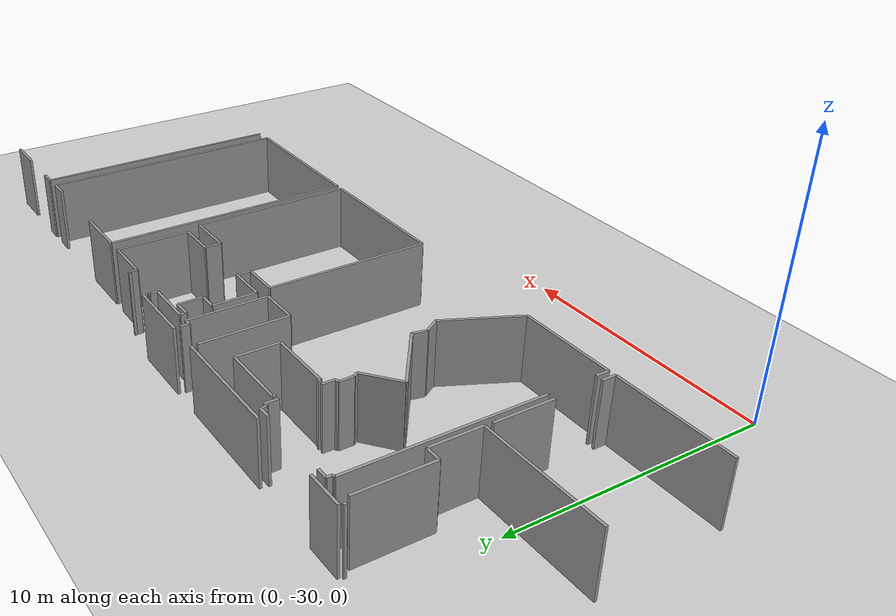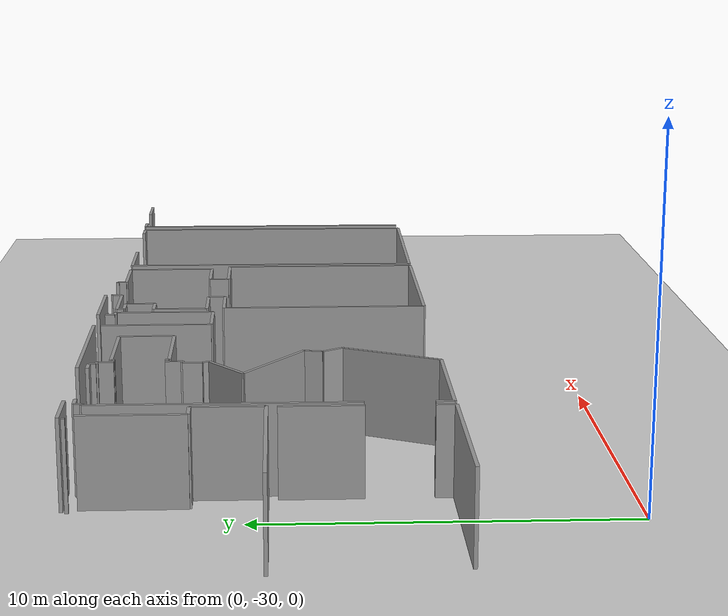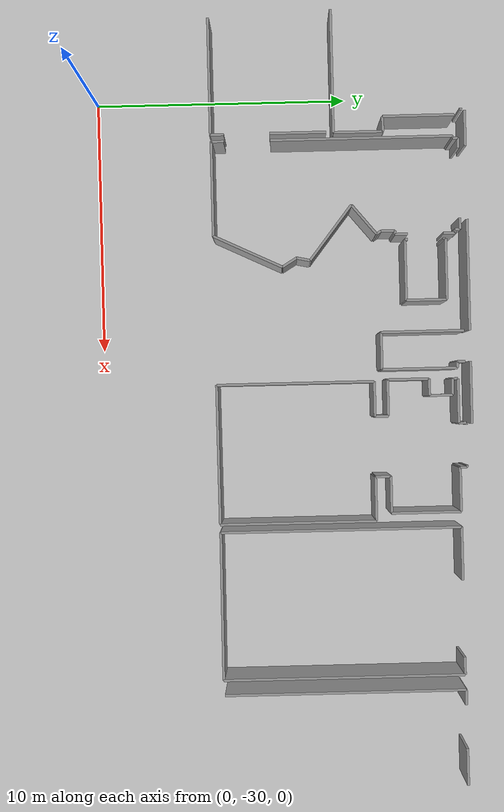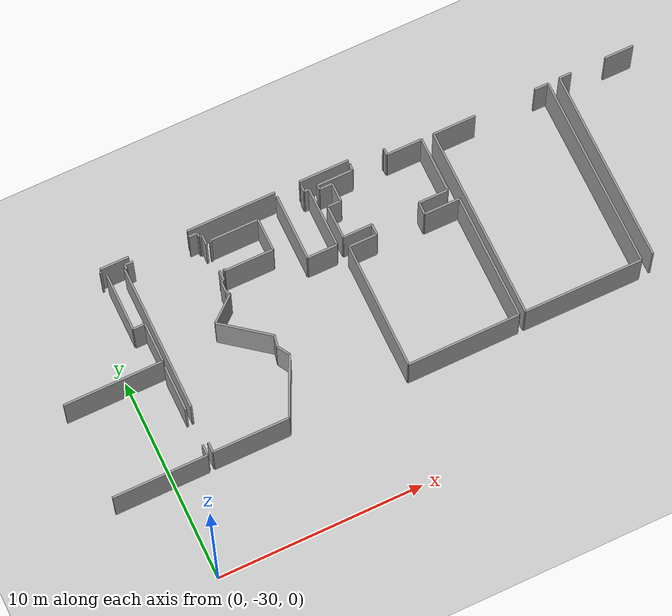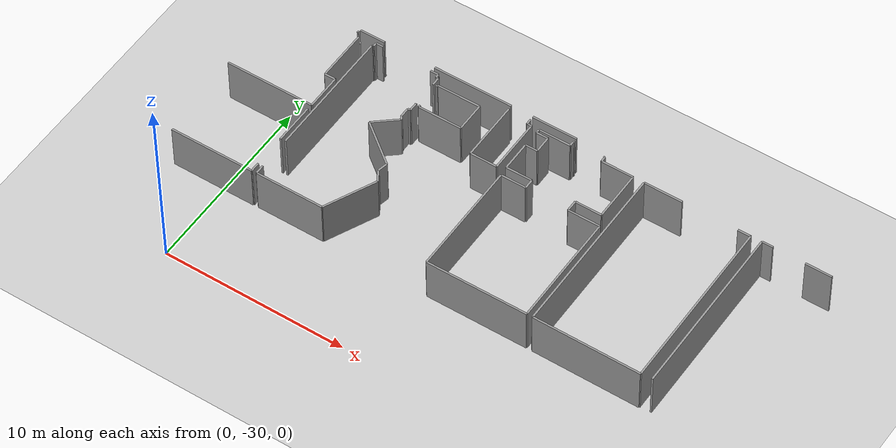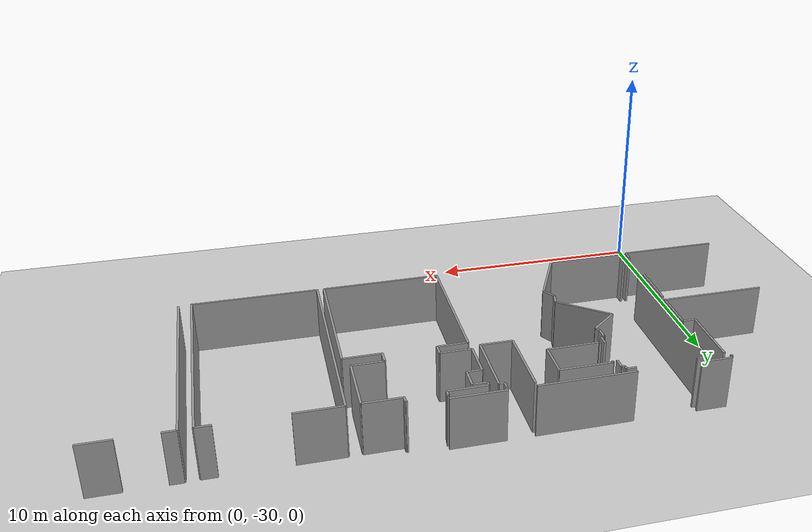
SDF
<sdf version="1.6">
 <world name="default">
  <model name="ground_plane">
   <static>1</static>
   <link name="link">
    <collision name="collision">
     <geometry><plane><normal>0 0 1</normal><size>100 100</size></plane></geometry>
     <surface><friction><ode><mu>100</mu><mu2>50</mu2></ode></friction></surface>
    </collision>
    <visual name="visual">
     <cast_shadows>0</cast_shadows>
     <geometry><plane><normal>0 0 1</normal><size>100 100</size></plane></geometry>
     <material>
      <script><uri>file://media/materials/scripts/gazebo.material</uri><name>Gazebo/Grey</name></script>
     </material>
    </visual>
   </link>
  </model>
  <model name="50045366">
   <static>1</static>
   <link name="Wall_249">
    <collision name="Wall_249_Collision">
     <geometry><box><size>2.43754048596 0.1 2.5</size></box></geometry>
     <pose>1.21877024298 0 1.25 0 0 0</pose>
    </collision>
    <visual name="Wall_249_Visual">
     <pose>1.21877024298 0 1.25 0 0 0</pose>
     <geometry><box><size>2.43754048596 0.1 2.5</size></box></geometry>
     <material>
      <script><uri>file://media/materials/scripts/gazebo.material</uri><name>Gazebo/Grey</name></script>
      <ambient>1 1 1 1</ambient>
     </material>
    </visual>
    <pose>67.3339599395 -40.7622156457 0 0 0 3.14159265359</pose>
   </link>
   <link name="Wall_250">
    <collision name="Wall_250_Collision">
     <geometry><box><size>4.34276206323 0.1 2.5</size></box></geometry>
     <pose>2.17138103161 0 1.25 0 0 0</pose>
    </collision>
    <visual name="Wall_250_Visual">
     <pose>2.17138103161 0 1.25 0 0 0</pose>
     <geometry><box><size>4.34276206323 0.1 2.5</size></box></geometry>
     <material>
      <script><uri>file://media/materials/scripts/gazebo.material</uri><name>Gazebo/Grey</name></script>
      <ambient>1 1 1 1</ambient>
     </material>
    </visual>
    <pose>63.6808880873 -40.7622156457 0 0 0 3.14159265359</pose>
   </link>
   <link name="Wall_251">
    <collision name="Wall_251_Collision">
     <geometry><box><size>1.39424115025 0.1 2.5</size></box></geometry>
     <pose>0.697120575123 0 1.25 0 0 0</pose>
    </collision>
    <visual name="Wall_251_Visual">
     <pose>0.697120575123 0 1.25 0 0 0</pose>
     <geometry><box><size>1.39424115025 0.1 2.5</size></box></geometry>
     <material>
      <script><uri>file://media/materials/scripts/gazebo.material</uri><name>Gazebo/Grey</name></script>
      <ambient>1 1 1 1</ambient>
     </material>
    </visual>
    <pose>56.4646708412 -40.7622156457 0 0 0 3.14159265359</pose>
   </link>
   <link name="Wall_253">
    <collision name="Wall_253_Collision">
     <geometry><box><size>0.0884022811853 0.1 2.5</size></box></geometry>
     <pose>0.0442011405926 0 1.25 0 0 0</pose>
    </collision>
    <visual name="Wall_253_Visual">
     <pose>0.0442011405926 0 1.25 0 0 0</pose>
     <geometry><box><size>0.0884022811853 0.1 2.5</size></box></geometry>
     <material>
      <script><uri>file://media/materials/scripts/gazebo.material</uri><name>Gazebo/Grey</name></script>
      <ambient>1 1 1 1</ambient>
     </material>
    </visual>
    <pose>55.070429691 -40.9099338253 0 0 0 3.14159265359</pose>
   </link>
   <link name="Wall_255">
    <collision name="Wall_255_Collision">
     <geometry><box><size>0.486593590835 0.1 2.5</size></box></geometry>
     <pose>0.243296795417 0 1.25 0 0 0</pose>
    </collision>
    <visual name="Wall_255_Visual">
     <pose>0.243296795417 0 1.25 0 0 0</pose>
     <geometry><box><size>0.486593590835 0.1 2.5</size></box></geometry>
     <material>
      <script><uri>file://media/materials/scripts/gazebo.material</uri><name>Gazebo/Grey</name></script>
      <ambient>1 1 1 1</ambient>
     </material>
    </visual>
    <pose>56.0672416202 -50.6936276689 0 0 0 1.57079632679</pose>
   </link>
   <link name="Wall_256">
    <collision name="Wall_256_Collision">
     <geometry><box><size>7.13137137849 0.1 2.5</size></box></geometry>
     <pose>3.56568568925 0 1.25 0 0 0</pose>
    </collision>
    <visual name="Wall_256_Visual">
     <pose>3.56568568925 0 1.25 0 0 0</pose>
     <geometry><box><size>7.13137137849 0.1 2.5</size></box></geometry>
     <material>
      <script><uri>file://media/materials/scripts/gazebo.material</uri><name>Gazebo/Grey</name></script>
      <ambient>1 1 1 1</ambient>
     </material>
    </visual>
    <pose>56.0672416202 -48.3842450877 0 0 0 1.57079632679</pose>
   </link>
   <link name="Wall_257">
    <collision name="Wall_257_Collision">
     <geometry><box><size>0.0871321334671 0.1 2.5</size></box></geometry>
     <pose>0.0435660667336 0 1.25 0 0 0</pose>
    </collision>
    <visual name="Wall_257_Visual">
     <pose>0.0435660667336 0 1.25 0 0 0</pose>
     <geometry><box><size>0.0871321334671 0.1 2.5</size></box></geometry>
     <material>
      <script><uri>file://media/materials/scripts/gazebo.material</uri><name>Gazebo/Grey</name></script>
      <ambient>1 1 1 1</ambient>
     </material>
    </visual>
    <pose>56.0672416202 -41.2528737092 0 0 0 0.0</pose>
   </link>
   <link name="Wall_258">
    <collision name="Wall_258_Collision">
     <geometry><box><size>0.210590491674 0.1 2.5</size></box></geometry>
     <pose>0.105295245837 0 1.25 0 0 0</pose>
    </collision>
    <visual name="Wall_258_Visual">
     <pose>0.105295245837 0 1.25 0 0 0</pose>
     <geometry><box><size>0.210590491674 0.1 2.5</size></box></geometry>
     <material>
      <script><uri>file://media/materials/scripts/gazebo.material</uri><name>Gazebo/Grey</name></script>
      <ambient>1 1 1 1</ambient>
     </material>
    </visual>
    <pose>56.1543737537 -41.2528737092 0 0 0 1.57079632679</pose>
   </link>
   <link name="Wall_259">
    <collision name="Wall_259_Collision">
     <geometry><box><size>0.399461457368 0.1 2.5</size></box></geometry>
     <pose>0.199730728684 0 1.25 0 0 0</pose>
    </collision>
    <visual name="Wall_259_Visual">
     <pose>0.199730728684 0 1.25 0 0 0</pose>
     <geometry><box><size>0.399461457368 0.1 2.5</size></box></geometry>
     <material>
      <script><uri>file://media/materials/scripts/gazebo.material</uri><name>Gazebo/Grey</name></script>
      <ambient>1 1 1 1</ambient>
     </material>
    </visual>
    <pose>56.1543737537 -41.0422832175 0 0 0 0.0</pose>
   </link>
   <link name="Wall_260">
    <collision name="Wall_260_Collision">
     <geometry><box><size>0.442011405927 0.1 2.5</size></box></geometry>
     <pose>0.221005702963 0 1.25 0 0 0</pose>
    </collision>
    <visual name="Wall_260_Visual">
     <pose>0.221005702963 0 1.25 0 0 0</pose>
     <geometry><box><size>0.442011405927 0.1 2.5</size></box></geometry>
     <material>
      <script><uri>file://media/materials/scripts/gazebo.material</uri><name>Gazebo/Grey</name></script>
      <ambient>1 1 1 1</ambient>
     </material>
    </visual>
    <pose>59.282493554 -41.0422832175 0 0 0 0.0</pose>
   </link>
   <link name="Wall_261">
    <collision name="Wall_261_Collision">
     <geometry><box><size>0.196110807687 0.1 2.5</size></box></geometry>
     <pose>0.0980554038435 0 1.25 0 0 0</pose>
    </collision>
    <visual name="Wall_261_Visual">
     <pose>0.0980554038435 0 1.25 0 0 0</pose>
     <geometry><box><size>0.196110807687 0.1 2.5</size></box></geometry>
     <material>
      <script><uri>file://media/materials/scripts/gazebo.material</uri><name>Gazebo/Grey</name></script>
      <ambient>1 1 1 1</ambient>
     </material>
    </visual>
    <pose>59.7245049599 -41.0422832175 0 0 0 -1.57079632679</pose>
   </link>
   <link name="Wall_262">
    <collision name="Wall_262_Collision">
     <geometry><box><size>0.138954160369 0.1 2.5</size></box></geometry>
     <pose>0.0694770801844 0 1.25 0 0 0</pose>
    </collision>
    <visual name="Wall_262_Visual">
     <pose>0.0694770801844 0 1.25 0 0 0</pose>
     <geometry><box><size>0.138954160369 0.1 2.5</size></box></geometry>
     <material>
      <script><uri>file://media/materials/scripts/gazebo.material</uri><name>Gazebo/Grey</name></script>
      <ambient>1 1 1 1</ambient>
     </material>
    </visual>
    <pose>59.7245049599 -41.2383940252 0 0 0 0.0</pose>
   </link>
   <link name="Wall_263">
    <collision name="Wall_263_Collision">
     <geometry><box><size>0.467287345518 0.1 2.5</size></box></geometry>
     <pose>0.233643672759 0 1.25 0 0 0</pose>
    </collision>
    <visual name="Wall_263_Visual">
     <pose>0.233643672759 0 1.25 0 0 0</pose>
     <geometry><box><size>0.467287345518 0.1 2.5</size></box></geometry>
     <material>
      <script><uri>file://media/materials/scripts/gazebo.material</uri><name>Gazebo/Grey</name></script>
      <ambient>1 1 1 1</ambient>
     </material>
    </visual>
    <pose>59.8634591203 -41.2383940252 0 0 0 -1.57079632679</pose>
   </link>
   <link name="Wall_264">
    <collision name="Wall_264_Collision">
     <geometry><box><size>0.48697463515 0.1 2.5</size></box></geometry>
     <pose>0.243487317575 0 1.25 0 0 0</pose>
    </collision>
    <visual name="Wall_264_Visual">
     <pose>0.243487317575 0 1.25 0 0 0</pose>
     <geometry><box><size>0.48697463515 0.1 2.5</size></box></geometry>
     <material>
      <script><uri>file://media/materials/scripts/gazebo.material</uri><name>Gazebo/Grey</name></script>
      <ambient>1 1 1 1</ambient>
     </material>
    </visual>
    <pose>59.8634591203 -43.1053841562 0 0 0 -1.57079632679</pose>
   </link>
   <link name="Wall_265">
    <collision name="Wall_265_Collision">
     <geometry><box><size>0.143780721698 0.1 2.5</size></box></geometry>
     <pose>0.071890360849 0 1.25 0 0 0</pose>
    </collision>
    <visual name="Wall_265_Visual">
     <pose>0.071890360849 0 1.25 0 0 0</pose>
     <geometry><box><size>0.143780721698 0.1 2.5</size></box></geometry>
     <material>
      <script><uri>file://media/materials/scripts/gazebo.material</uri><name>Gazebo/Grey</name></script>
      <ambient>1 1 1 1</ambient>
     </material>
    </visual>
    <pose>59.8634591203 -43.5923587913 0 0 0 3.14159265359</pose>
   </link>
   <link name="Wall_266">
    <collision name="Wall_266_Collision">
     <geometry><box><size>0.54401353498 0.1 2.5</size></box></geometry>
     <pose>0.27200676749 0 1.25 0 0 0</pose>
    </collision>
    <visual name="Wall_266_Visual">
     <pose>0.27200676749 0 1.25 0 0 0</pose>
     <geometry><box><size>0.54401353498 0.1 2.5</size></box></geometry>
     <material>
      <script><uri>file://media/materials/scripts/gazebo.material</uri><name>Gazebo/Grey</name></script>
      <ambient>1 1 1 1</ambient>
     </material>
    </visual>
    <pose>59.7196783986 -43.5923587913 0 0 0 -1.56495936297</pose>
   </link>
   <link name="Wall_267">
    <collision name="Wall_267_Collision">
     <geometry><box><size>0.208388665745 0.1 2.5</size></box></geometry>
     <pose>0.104194332873 0 1.25 0 0 0</pose>
    </collision>
    <visual name="Wall_267_Visual">
     <pose>0.104194332873 0 1.25 0 0 0</pose>
     <geometry><box><size>0.208388665745 0.1 2.5</size></box></geometry>
     <material>
      <script><uri>file://media/materials/scripts/gazebo.material</uri><name>Gazebo/Grey</name></script>
      <ambient>1 1 1 1</ambient>
     </material>
    </visual>
    <pose>59.7228537679 -44.136363059 0 0 0 -1.01187397231</pose>
   </link>
   <link name="Wall_268">
    <collision name="Wall_268_Collision">
     <geometry><box><size>1.50618054385 0.1 2.5</size></box></geometry>
     <pose>0.753090271926 0 1.25 0 0 0</pose>
    </collision>
    <visual name="Wall_268_Visual">
     <pose>0.753090271926 0 1.25 0 0 0</pose>
     <geometry><box><size>1.50618054385 0.1 2.5</size></box></geometry>
     <material>
      <script><uri>file://media/materials/scripts/gazebo.material</uri><name>Gazebo/Grey</name></script>
      <ambient>1 1 1 1</ambient>
     </material>
    </visual>
    <pose>59.8333566194 -44.3130406066 0 0 0 -2.44965086315</pose>
   </link>
   <link name="Wall_269">
    <collision name="Wall_269_Collision">
     <geometry><box><size>2.69974054504 0.1 2.5</size></box></geometry>
     <pose>1.34987027252 0 1.25 0 0 0</pose>
    </collision>
    <visual name="Wall_269_Visual">
     <pose>1.34987027252 0 1.25 0 0 0</pose>
     <geometry><box><size>2.69974054504 0.1 2.5</size></box></geometry>
     <material>
      <script><uri>file://media/materials/scripts/gazebo.material</uri><name>Gazebo/Grey</name></script>
      <ambient>1 1 1 1</ambient>
     </material>
    </visual>
    <pose>58.6735847379 -45.2740343702 0 0 0 -0.660655296884</pose>
   </link>
   <link name="Wall_270">
    <collision name="Wall_270_Collision">
     <geometry><box><size>0.541553453224 0.1 2.5</size></box></geometry>
     <pose>0.270776726612 0 1.25 0 0 0</pose>
    </collision>
    <visual name="Wall_270_Visual">
     <pose>0.270776726612 0 1.25 0 0 0</pose>
     <geometry><box><size>0.541553453224 0.1 2.5</size></box></geometry>
     <material>
      <script><uri>file://media/materials/scripts/gazebo.material</uri><name>Gazebo/Grey</name></script>
      <ambient>1 1 1 1</ambient>
     </material>
    </visual>
    <pose>60.8052736533 -46.930688039 0 0 0 -1.77628738596</pose>
   </link>
   <link name="Wall_271">
    <collision name="Wall_271_Collision">
     <geometry><box><size>0.659225521897 0.1 2.5</size></box></geometry>
     <pose>0.329612760949 0 1.25 0 0 0</pose>
    </collision>
    <visual name="Wall_271_Visual">
     <pose>0.329612760949 0 1.25 0 0 0</pose>
     <geometry><box><size>0.659225521897 0.1 2.5</size></box></geometry>
     <material>
      <script><uri>file://media/materials/scripts/gazebo.material</uri><name>Gazebo/Grey</name></script>
      <ambient>1 1 1 1</ambient>
     </material>
    </visual>
    <pose>60.6947708018 -47.4608476966 0 0 0 -1.02459425211</pose>
   </link>
   <link name="Wall_272">
    <collision name="Wall_272_Collision">
     <geometry><box><size>2.95922026093 0.1 2.5</size></box></geometry>
     <pose>1.47961013046 0 1.25 0 0 0</pose>
    </collision>
    <visual name="Wall_272_Visual">
     <pose>1.47961013046 0 1.25 0 0 0</pose>
     <geometry><box><size>2.95922026093 0.1 2.5</size></box></geometry>
     <material>
      <script><uri>file://media/materials/scripts/gazebo.material</uri><name>Gazebo/Grey</name></script>
      <ambient>1 1 1 1</ambient>
     </material>
    </visual>
    <pose>61.0372026267 -48.0241582096 0 0 0 -2.01442203692</pose>
   </link>
   <link name="Wall_273">
    <collision name="Wall_273_Collision">
     <geometry><box><size>3.69981476211 0.1 2.5</size></box></geometry>
     <pose>1.84990738105 0 1.25 0 0 0</pose>
    </collision>
    <visual name="Wall_273_Visual">
     <pose>1.84990738105 0 1.25 0 0 0</pose>
     <geometry><box><size>3.69981476211 0.1 2.5</size></box></geometry>
     <material>
      <script><uri>file://media/materials/scripts/gazebo.material</uri><name>Gazebo/Grey</name></script>
      <ambient>1 1 1 1</ambient>
     </material>
    </visual>
    <pose>59.7670549085 -50.696930053 0 0 0 3.14070007255</pose>
   </link>
   <link name="Wall_278">
    <collision name="Wall_278_Collision">
     <geometry><box><size>2.81223406282 0.1 2.5</size></box></geometry>
     <pose>1.40611703141 0 1.25 0 0 0</pose>
    </collision>
    <visual name="Wall_278_Visual">
     <pose>1.40611703141 0 1.25 0 0 0</pose>
     <geometry><box><size>2.81223406282 0.1 2.5</size></box></geometry>
     <material>
      <script><uri>file://media/materials/scripts/gazebo.material</uri><name>Gazebo/Grey</name></script>
      <ambient>1 1 1 1</ambient>
     </material>
    </visual>
    <pose>55.2375811307 -41.1585017338 0 0 0 -1.57079632679</pose>
   </link>
   <link name="Wall_279">
    <collision name="Wall_279_Collision">
     <geometry><box><size>0.586554216255 0.1 2.5</size></box></geometry>
     <pose>0.293277108128 0 1.25 0 0 0</pose>
    </collision>
    <visual name="Wall_279_Visual">
     <pose>0.293277108128 0 1.25 0 0 0</pose>
     <geometry><box><size>0.586554216255 0.1 2.5</size></box></geometry>
     <material>
      <script><uri>file://media/materials/scripts/gazebo.material</uri><name>Gazebo/Grey</name></script>
      <ambient>1 1 1 1</ambient>
     </material>
    </visual>
    <pose>55.2375811307 -43.9707357966 0 0 0 0.0</pose>
   </link>
   <link name="Wall_280">
    <collision name="Wall_280_Collision">
     <geometry><box><size>1.93278378275 0.1 2.5</size></box></geometry>
     <pose>0.966391891377 0 1.25 0 0 0</pose>
    </collision>
    <visual name="Wall_280_Visual">
     <pose>0.966391891377 0 1.25 0 0 0</pose>
     <geometry><box><size>1.93278378275 0.1 2.5</size></box></geometry>
     <material>
      <script><uri>file://media/materials/scripts/gazebo.material</uri><name>Gazebo/Grey</name></script>
      <ambient>1 1 1 1</ambient>
     </material>
    </visual>
    <pose>55.8241353469 -43.9707357966 0 0 0 -1.57079632679</pose>
   </link>
   <link name="Wall_281">
    <collision name="Wall_281_Collision">
     <geometry><box><size>4.82618221688 0.1 2.5</size></box></geometry>
     <pose>2.41309110844 0 1.25 0 0 0</pose>
    </collision>
    <visual name="Wall_281_Visual">
     <pose>2.41309110844 0 1.25 0 0 0</pose>
     <geometry><box><size>4.82618221688 0.1 2.5</size></box></geometry>
     <material>
      <script><uri>file://media/materials/scripts/gazebo.material</uri><name>Gazebo/Grey</name></script>
      <ambient>1 1 1 1</ambient>
     </material>
    </visual>
    <pose>55.8241353469 -45.9035195793 0 0 0 -3.14069784634</pose>
   </link>
   <link name="Wall_293">
    <collision name="Wall_293_Collision">
     <geometry><box><size>2.21856701934 0.1 2.5</size></box></geometry>
     <pose>1.10928350967 0 1.25 0 0 0</pose>
    </collision>
    <visual name="Wall_293_Visual">
     <pose>1.10928350967 0 1.25 0 0 0</pose>
     <geometry><box><size>2.21856701934 0.1 2.5</size></box></geometry>
     <material>
      <script><uri>file://media/materials/scripts/gazebo.material</uri><name>Gazebo/Grey</name></script>
      <ambient>1 1 1 1</ambient>
     </material>
    </visual>
    <pose>55.8000025403 -46.1863814762 0 0 0 -1.57079632679</pose>
   </link>
   <link name="Wall_294">
    <collision name="Wall_294_Collision">
     <geometry><box><size>0.520760564454 0.1 2.5</size></box></geometry>
     <pose>0.260380282227 0 1.25 0 0 0</pose>
    </collision>
    <visual name="Wall_294_Visual">
     <pose>0.260380282227 0 1.25 0 0 0</pose>
     <geometry><box><size>0.520760564454 0.1 2.5</size></box></geometry>
     <material>
      <script><uri>file://media/materials/scripts/gazebo.material</uri><name>Gazebo/Grey</name></script>
      <ambient>1 1 1 1</ambient>
     </material>
    </visual>
    <pose>55.8000025403 -50.1949676747 0 0 0 -1.57079632679</pose>
   </link>
   <link name="Wall_295">
    <collision name="Wall_295_Collision">
     <geometry><box><size>4.58104177516 0.1 2.5</size></box></geometry>
     <pose>2.29052088758 0 1.25 0 0 0</pose>
    </collision>
    <visual name="Wall_295_Visual">
     <pose>2.29052088758 0 1.25 0 0 0</pose>
     <geometry><box><size>4.58104177516 0.1 2.5</size></box></geometry>
     <material>
      <script><uri>file://media/materials/scripts/gazebo.material</uri><name>Gazebo/Grey</name></script>
      <ambient>1 1 1 1</ambient>
     </material>
    </visual>
    <pose>55.8000025403 -50.7157282392 0 0 0 3.14159265359</pose>
   </link>
   <link name="Wall_300">
    <collision name="Wall_300_Collision">
     <geometry><box><size>0.107454496958 0.1 2.5</size></box></geometry>
     <pose>0.053727248479 0 1.25 0 0 0</pose>
    </collision>
    <visual name="Wall_300_Visual">
     <pose>0.053727248479 0 1.25 0 0 0</pose>
     <geometry><box><size>0.107454496958 0.1 2.5</size></box></geometry>
     <material>
      <script><uri>file://media/materials/scripts/gazebo.material</uri><name>Gazebo/Grey</name></script>
      <ambient>1 1 1 1</ambient>
     </material>
    </visual>
    <pose>60.0763358779 -43.2086471657 0 0 0 1.57079632679</pose>
   </link>
   <link name="Wall_301">
    <collision name="Wall_301_Collision">
     <geometry><box><size>0.100214654964 0.1 2.5</size></box></geometry>
     <pose>0.0501073274822 0 1.25 0 0 0</pose>
    </collision>
    <visual name="Wall_301_Visual">
     <pose>0.0501073274822 0 1.25 0 0 0</pose>
     <geometry><box><size>0.100214654964 0.1 2.5</size></box></geometry>
     <material>
      <script><uri>file://media/materials/scripts/gazebo.material</uri><name>Gazebo/Grey</name></script>
      <ambient>1 1 1 1</ambient>
     </material>
    </visual>
    <pose>60.0763358779 -41.7158425525 0 0 0 1.57079632679</pose>
   </link>
   <link name="Wall_302">
    <collision name="Wall_302_Collision">
     <geometry><box><size>2.3769544398 0.1 2.5</size></box></geometry>
     <pose>1.1884772199 0 1.25 0 0 0</pose>
    </collision>
    <visual name="Wall_302_Visual">
     <pose>1.1884772199 0 1.25 0 0 0</pose>
     <geometry><box><size>2.3769544398 0.1 2.5</size></box></geometry>
     <material>
      <script><uri>file://media/materials/scripts/gazebo.material</uri><name>Gazebo/Grey</name></script>
      <ambient>1 1 1 1</ambient>
     </material>
    </visual>
    <pose>60.0763358779 -41.6156278975 0 0 0 0.0</pose>
   </link>
   <link name="Wall_303">
    <collision name="Wall_303_Collision">
     <geometry><box><size>1.59301926814 0.1 2.5</size></box></geometry>
     <pose>0.79650963407 0 1.25 0 0 0</pose>
    </collision>
    <visual name="Wall_303_Visual">
     <pose>0.79650963407 0 1.25 0 0 0</pose>
     <geometry><box><size>1.59301926814 0.1 2.5</size></box></geometry>
     <material>
      <script><uri>file://media/materials/scripts/gazebo.material</uri><name>Gazebo/Grey</name></script>
      <ambient>1 1 1 1</ambient>
     </material>
    </visual>
    <pose>62.4532903177 -41.6156278975 0 0 0 -1.57079632679</pose>
   </link>
   <link name="Wall_304">
    <collision name="Wall_304_Collision">
     <geometry><box><size>2.3769544398 0.1 2.5</size></box></geometry>
     <pose>1.1884772199 0 1.25 0 0 0</pose>
    </collision>
    <visual name="Wall_304_Visual">
     <pose>1.1884772199 0 1.25 0 0 0</pose>
     <geometry><box><size>2.3769544398 0.1 2.5</size></box></geometry>
     <material>
      <script><uri>file://media/materials/scripts/gazebo.material</uri><name>Gazebo/Grey</name></script>
      <ambient>1 1 1 1</ambient>
     </material>
    </visual>
    <pose>62.4532903177 -43.2086471657 0 0 0 3.14159265359</pose>
   </link>
   <link name="Wall_305">
    <collision name="Wall_305_Collision">
     <geometry><box><size>3.25589666078 0.1 2.5</size></box></geometry>
     <pose>1.62794833039 0 1.25 0 0 0</pose>
    </collision>
    <visual name="Wall_305_Visual">
     <pose>1.62794833039 0 1.25 0 0 0</pose>
     <geometry><box><size>3.25589666078 0.1 2.5</size></box></geometry>
     <material>
      <script><uri>file://media/materials/scripts/gazebo.material</uri><name>Gazebo/Grey</name></script>
      <ambient>1 1 1 1</ambient>
     </material>
    </visual>
    <pose>63.6850795748 -44.2271786209 0 0 0 1.57079632679</pose>
   </link>
   <link name="Wall_306">
    <collision name="Wall_306_Collision">
     <geometry><box><size>0.301914112611 0.1 2.5</size></box></geometry>
     <pose>0.150957056306 0 1.25 0 0 0</pose>
    </collision>
    <visual name="Wall_306_Visual">
     <pose>0.150957056306 0 1.25 0 0 0</pose>
     <geometry><box><size>0.301914112611 0.1 2.5</size></box></geometry>
     <material>
      <script><uri>file://media/materials/scripts/gazebo.material</uri><name>Gazebo/Grey</name></script>
      <ambient>1 1 1 1</ambient>
     </material>
    </visual>
    <pose>64.9002298967 -40.9712819601 0 0 0 -1.57079632679</pose>
   </link>
   <link name="Wall_307">
    <collision name="Wall_307_Collision">
     <geometry><box><size>0.242217169857 0.1 2.5</size></box></geometry>
     <pose>0.121108584928 0 1.25 0 0 0</pose>
    </collision>
    <visual name="Wall_307_Visual">
     <pose>0.121108584928 0 1.25 0 0 0</pose>
     <geometry><box><size>0.242217169857 0.1 2.5</size></box></geometry>
     <material>
      <script><uri>file://media/materials/scripts/gazebo.material</uri><name>Gazebo/Grey</name></script>
      <ambient>1 1 1 1</ambient>
     </material>
    </visual>
    <pose>64.9002298967 -41.2731960727 0 0 0 0.0</pose>
   </link>
   <link name="Wall_308">
    <collision name="Wall_308_Collision">
     <geometry><box><size>2.95639582883 0.1 2.5</size></box></geometry>
     <pose>1.47819791442 0 1.25 0 0 0</pose>
    </collision>
    <visual name="Wall_308_Visual">
     <pose>1.47819791442 0 1.25 0 0 0</pose>
     <geometry><box><size>2.95639582883 0.1 2.5</size></box></geometry>
     <material>
      <script><uri>file://media/materials/scripts/gazebo.material</uri><name>Gazebo/Grey</name></script>
      <ambient>1 1 1 1</ambient>
     </material>
    </visual>
    <pose>65.1424470666 -41.2731960727 0 0 0 -1.57079632679</pose>
   </link>
   <link name="Wall_309">
    <collision name="Wall_309_Collision">
     <geometry><box><size>1.45736948994 0.1 2.5</size></box></geometry>
     <pose>0.728684744968 0 1.25 0 0 0</pose>
    </collision>
    <visual name="Wall_309_Visual">
     <pose>0.728684744968 0 1.25 0 0 0</pose>
     <geometry><box><size>1.45736948994 0.1 2.5</size></box></geometry>
     <material>
      <script><uri>file://media/materials/scripts/gazebo.material</uri><name>Gazebo/Grey</name></script>
      <ambient>1 1 1 1</ambient>
     </material>
    </visual>
    <pose>65.1424470666 -44.2295919015 0 0 0 3.13993673738</pose>
   </link>
   <link name="Wall_310">
    <collision name="Wall_310_Collision">
     <geometry><box><size>6.16656717176 0.1 2.5</size></box></geometry>
     <pose>3.08328358588 0 1.25 0 0 0</pose>
    </collision>
    <visual name="Wall_310_Visual">
     <pose>3.08328358588 0 1.25 0 0 0</pose>
     <geometry><box><size>6.16656717176 0.1 2.5</size></box></geometry>
     <material>
      <script><uri>file://media/materials/scripts/gazebo.material</uri><name>Gazebo/Grey</name></script>
      <ambient>1 1 1 1</ambient>
     </material>
    </visual>
    <pose>65.5989381565 -50.7093775006 0 0 0 1.57079632679</pose>
   </link>
   <link name="Wall_311">
    <collision name="Wall_311_Collision">
     <geometry><box><size>1.36985431406 0.1 2.5</size></box></geometry>
     <pose>0.684927157028 0 1.25 0 0 0</pose>
    </collision>
    <visual name="Wall_311_Visual">
     <pose>0.684927157028 0 1.25 0 0 0</pose>
     <geometry><box><size>1.36985431406 0.1 2.5</size></box></geometry>
     <material>
      <script><uri>file://media/materials/scripts/gazebo.material</uri><name>Gazebo/Grey</name></script>
      <ambient>1 1 1 1</ambient>
     </material>
    </visual>
    <pose>65.5989381565 -44.5428103288 0 0 0 0.0</pose>
   </link>
   <link name="Wall_312">
    <collision name="Wall_312_Collision">
     <geometry><box><size>0.520760564454 0.1 2.5</size></box></geometry>
     <pose>0.260380282227 0 1.25 0 0 0</pose>
    </collision>
    <visual name="Wall_312_Visual">
     <pose>0.260380282227 0 1.25 0 0 0</pose>
     <geometry><box><size>0.520760564454 0.1 2.5</size></box></geometry>
     <material>
      <script><uri>file://media/materials/scripts/gazebo.material</uri><name>Gazebo/Grey</name></script>
      <ambient>1 1 1 1</ambient>
     </material>
    </visual>
    <pose>66.9687924706 -44.5428103288 0 0 0 1.57079632679</pose>
   </link>
   <link name="Wall_313">
    <collision name="Wall_313_Collision">
     <geometry><box><size>1.42256544436 0.1 2.5</size></box></geometry>
     <pose>0.711282722181 0 1.25 0 0 0</pose>
    </collision>
    <visual name="Wall_313_Visual">
     <pose>0.711282722181 0 1.25 0 0 0</pose>
     <geometry><box><size>1.42256544436 0.1 2.5</size></box></geometry>
     <material>
      <script><uri>file://media/materials/scripts/gazebo.material</uri><name>Gazebo/Grey</name></script>
      <ambient>1 1 1 1</ambient>
     </material>
    </visual>
    <pose>66.9687924706 -44.0220497644 0 0 0 3.14159265359</pose>
   </link>
   <link name="Wall_314">
    <collision name="Wall_314_Collision">
     <geometry><box><size>1.62934549288 0.1 2.5</size></box></geometry>
     <pose>0.81467274644 0 1.25 0 0 0</pose>
    </collision>
    <visual name="Wall_314_Visual">
     <pose>0.81467274644 0 1.25 0 0 0</pose>
     <geometry><box><size>1.62934549288 0.1 2.5</size></box></geometry>
     <material>
      <script><uri>file://media/materials/scripts/gazebo.material</uri><name>Gazebo/Grey</name></script>
      <ambient>1 1 1 1</ambient>
     </material>
    </visual>
    <pose>65.5462270262 -44.0220497644 0 0 0 1.57079632679</pose>
   </link>
   <link name="Wall_315">
    <collision name="Wall_315_Collision">
     <geometry><box><size>0.655142193037 0.1 2.5</size></box></geometry>
     <pose>0.327571096519 0 1.25 0 0 0</pose>
    </collision>
    <visual name="Wall_315_Visual">
     <pose>0.327571096519 0 1.25 0 0 0</pose>
     <geometry><box><size>0.655142193037 0.1 2.5</size></box></geometry>
     <material>
      <script><uri>file://media/materials/scripts/gazebo.material</uri><name>Gazebo/Grey</name></script>
      <ambient>1 1 1 1</ambient>
     </material>
    </visual>
    <pose>65.5462270262 -42.3927042715 0 0 0 0.0</pose>
   </link>
   <link name="Wall_316">
    <collision name="Wall_316_Collision">
     <geometry><box><size>0.912347105968 0.1 2.5</size></box></geometry>
     <pose>0.456173552984 0 1.25 0 0 0</pose>
    </collision>
    <visual name="Wall_316_Visual">
     <pose>0.456173552984 0 1.25 0 0 0</pose>
     <geometry><box><size>0.912347105968 0.1 2.5</size></box></geometry>
     <material>
      <script><uri>file://media/materials/scripts/gazebo.material</uri><name>Gazebo/Grey</name></script>
      <ambient>1 1 1 1</ambient>
     </material>
    </visual>
    <pose>66.2013692192 -42.3927042715 0 0 0 1.57079632679</pose>
   </link>
   <link name="Wall_317">
    <collision name="Wall_317_Collision">
     <geometry><box><size>0.633930726143 0.1 2.5</size></box></geometry>
     <pose>0.316965363072 0 1.25 0 0 0</pose>
    </collision>
    <visual name="Wall_317_Visual">
     <pose>0.316965363072 0 1.25 0 0 0</pose>
     <geometry><box><size>0.633930726143 0.1 2.5</size></box></geometry>
     <material>
      <script><uri>file://media/materials/scripts/gazebo.material</uri><name>Gazebo/Grey</name></script>
      <ambient>1 1 1 1</ambient>
     </material>
    </visual>
    <pose>66.2013692192 -41.4803571655 0 0 0 3.14159265359</pose>
   </link>
   <link name="Wall_318">
    <collision name="Wall_318_Collision">
     <geometry><box><size>0.211352580305 0.1 2.5</size></box></geometry>
     <pose>0.105676290153 0 1.25 0 0 0</pose>
    </collision>
    <visual name="Wall_318_Visual">
     <pose>0.105676290153 0 1.25 0 0 0</pose>
     <geometry><box><size>0.211352580305 0.1 2.5</size></box></geometry>
     <material>
      <script><uri>file://media/materials/scripts/gazebo.material</uri><name>Gazebo/Grey</name></script>
      <ambient>1 1 1 1</ambient>
     </material>
    </visual>
    <pose>65.5674384931 -41.4803571655 0 0 0 1.57079632679</pose>
   </link>
   <link name="Wall_319">
    <collision name="Wall_319_Collision">
     <geometry><box><size>1.73934028528 0.1 2.5</size></box></geometry>
     <pose>0.869670142638 0 1.25 0 0 0</pose>
    </collision>
    <visual name="Wall_319_Visual">
     <pose>0.869670142638 0 1.25 0 0 0</pose>
     <geometry><box><size>1.73934028528 0.1 2.5</size></box></geometry>
     <material>
      <script><uri>file://media/materials/scripts/gazebo.material</uri><name>Gazebo/Grey</name></script>
      <ambient>1 1 1 1</ambient>
     </material>
    </visual>
    <pose>65.5674384931 -41.2690045852 0 0 0 0.0</pose>
   </link>
   <link name="Wall_320">
    <collision name="Wall_320_Collision">
     <geometry><box><size>0.285148162731 0.1 2.5</size></box></geometry>
     <pose>0.142574081366 0 1.25 0 0 0</pose>
    </collision>
    <visual name="Wall_320_Visual">
     <pose>0.142574081366 0 1.25 0 0 0</pose>
     <geometry><box><size>0.285148162731 0.1 2.5</size></box></geometry>
     <material>
      <script><uri>file://media/materials/scripts/gazebo.material</uri><name>Gazebo/Grey</name></script>
      <ambient>1 1 1 1</ambient>
     </material>
    </visual>
    <pose>67.3067787784 -41.2690045852 0 0 0 1.57079632679</pose>
   </link>
   <link name="Wall_321">
    <collision name="Wall_321_Collision">
     <geometry><box><size>0.0659206665735 0.1 2.5</size></box></geometry>
     <pose>0.0329603332868 0 1.25 0 0 0</pose>
    </collision>
    <visual name="Wall_321_Visual">
     <pose>0.0329603332868 0 1.25 0 0 0</pose>
     <geometry><box><size>0.0659206665735 0.1 2.5</size></box></geometry>
     <material>
      <script><uri>file://media/materials/scripts/gazebo.material</uri><name>Gazebo/Grey</name></script>
      <ambient>1 1 1 1</ambient>
     </material>
    </visual>
    <pose>67.3067787784 -40.9838564225 0 0 0 0.0</pose>
   </link>
   <link name="Wall_322">
    <collision name="Wall_322_Collision">
     <geometry><box><size>0.0758278187753 0.1 2.5</size></box></geometry>
     <pose>0.0379139093877 0 1.25 0 0 0</pose>
    </collision>
    <visual name="Wall_322_Visual">
     <pose>0.0379139093877 0 1.25 0 0 0</pose>
     <geometry><box><size>0.0758278187753 0.1 2.5</size></box></geometry>
     <material>
      <script><uri>file://media/materials/scripts/gazebo.material</uri><name>Gazebo/Grey</name></script>
      <ambient>1 1 1 1</ambient>
     </material>
    </visual>
    <pose>68.9631784176 -40.9838564225 0 0 0 0.0</pose>
   </link>
   <link name="Wall_323">
    <collision name="Wall_323_Collision">
     <geometry><box><size>0.279813542315 0.1 2.5</size></box></geometry>
     <pose>0.139906771157 0 1.25 0 0 0</pose>
    </collision>
    <visual name="Wall_323_Visual">
     <pose>0.139906771157 0 1.25 0 0 0</pose>
     <geometry><box><size>0.279813542315 0.1 2.5</size></box></geometry>
     <material>
      <script><uri>file://media/materials/scripts/gazebo.material</uri><name>Gazebo/Grey</name></script>
      <ambient>1 1 1 1</ambient>
     </material>
    </visual>
    <pose>69.0390062364 -40.9838564225 0 0 0 -1.57079632679</pose>
   </link>
   <link name="Wall_324">
    <collision name="Wall_324_Collision">
     <geometry><box><size>1.73032223648 0.1 2.5</size></box></geometry>
     <pose>0.865161118238 0 1.25 0 0 0</pose>
    </collision>
    <visual name="Wall_324_Visual">
     <pose>0.865161118238 0 1.25 0 0 0</pose>
     <geometry><box><size>1.73032223648 0.1 2.5</size></box></geometry>
     <material>
      <script><uri>file://media/materials/scripts/gazebo.material</uri><name>Gazebo/Grey</name></script>
      <ambient>1 1 1 1</ambient>
     </material>
    </visual>
    <pose>69.0390062364 -41.2636699648 0 0 0 0.0</pose>
   </link>
   <link name="Wall_325">
    <collision name="Wall_325_Collision">
     <geometry><box><size>2.71837014645 0.1 2.5</size></box></geometry>
     <pose>1.35918507322 0 1.25 0 0 0</pose>
    </collision>
    <visual name="Wall_325_Visual">
     <pose>1.35918507322 0 1.25 0 0 0</pose>
     <geometry><box><size>2.71837014645 0.1 2.5</size></box></geometry>
     <material>
      <script><uri>file://media/materials/scripts/gazebo.material</uri><name>Gazebo/Grey</name></script>
      <ambient>1 1 1 1</ambient>
     </material>
    </visual>
    <pose>70.7693284729 -41.2636699648 0 0 0 -1.57079632679</pose>
   </link>
   <link name="Wall_326">
    <collision name="Wall_326_Collision">
     <geometry><box><size>1.43628303972 0.1 2.5</size></box></geometry>
     <pose>0.718141519859 0 1.25 0 0 0</pose>
    </collision>
    <visual name="Wall_326_Visual">
     <pose>0.718141519859 0 1.25 0 0 0</pose>
     <geometry><box><size>1.43628303972 0.1 2.5</size></box></geometry>
     <material>
      <script><uri>file://media/materials/scripts/gazebo.material</uri><name>Gazebo/Grey</name></script>
      <ambient>1 1 1 1</ambient>
     </material>
    </visual>
    <pose>70.7693284729 -43.9820401113 0 0 0 3.14159265359</pose>
   </link>
   <link name="Wall_327">
    <collision name="Wall_327_Collision">
     <geometry><box><size>0.598493604806 0.1 2.5</size></box></geometry>
     <pose>0.299246802403 0 1.25 0 0 0</pose>
    </collision>
    <visual name="Wall_327_Visual">
     <pose>0.299246802403 0 1.25 0 0 0</pose>
     <geometry><box><size>0.598493604806 0.1 2.5</size></box></geometry>
     <material>
      <script><uri>file://media/materials/scripts/gazebo.material</uri><name>Gazebo/Grey</name></script>
      <ambient>1 1 1 1</ambient>
     </material>
    </visual>
    <pose>69.3330454332 -43.9820401113 0 0 0 -1.57079632679</pose>
   </link>
   <link name="Wall_328">
    <collision name="Wall_328_Collision">
     <geometry><box><size>1.72968716262 0.1 2.5</size></box></geometry>
     <pose>0.864843581308 0 1.25 0 0 0</pose>
    </collision>
    <visual name="Wall_328_Visual">
     <pose>0.864843581308 0 1.25 0 0 0</pose>
     <geometry><box><size>1.72968716262 0.1 2.5</size></box></geometry>
     <material>
      <script><uri>file://media/materials/scripts/gazebo.material</uri><name>Gazebo/Grey</name></script>
      <ambient>1 1 1 1</ambient>
     </material>
    </visual>
    <pose>69.3330454332 -44.5805337161 0 0 0 0.0</pose>
   </link>
   <link name="Wall_329">
    <collision name="Wall_329_Collision">
     <geometry><box><size>6.11309395283 0.1 2.5</size></box></geometry>
     <pose>3.05654697641 0 1.25 0 0 0</pose>
    </collision>
    <visual name="Wall_329_Visual">
     <pose>3.05654697641 0 1.25 0 0 0</pose>
     <geometry><box><size>6.11309395283 0.1 2.5</size></box></geometry>
     <material>
      <script><uri>file://media/materials/scripts/gazebo.material</uri><name>Gazebo/Grey</name></script>
      <ambient>1 1 1 1</ambient>
     </material>
    </visual>
    <pose>71.0627325958 -44.5805337161 0 0 0 -1.57079632679</pose>
   </link>
   <link name="Wall_330">
    <collision name="Wall_330_Collision">
     <geometry><box><size>5.46381713933 0.1 2.5</size></box></geometry>
     <pose>2.73190856967 0 1.25 0 0 0</pose>
    </collision>
    <visual name="Wall_330_Visual">
     <pose>2.73190856967 0 1.25 0 0 0</pose>
     <geometry><box><size>5.46381713933 0.1 2.5</size></box></geometry>
     <material>
      <script><uri>file://media/materials/scripts/gazebo.material</uri><name>Gazebo/Grey</name></script>
      <ambient>1 1 1 1</ambient>
     </material>
    </visual>
    <pose>71.0627325958 -50.6936276689 0 0 0 -3.13871008027</pose>
   </link>
   <link name="Wall_331">
    <collision name="Wall_331_Collision">
     <geometry><box><size>9.42271786209 0.1 2.5</size></box></geometry>
     <pose>4.71135893104 0 1.25 0 0 0</pose>
    </collision>
    <visual name="Wall_331_Visual">
     <pose>4.71135893104 0 1.25 0 0 0</pose>
     <geometry><box><size>9.42271786209 0.1 2.5</size></box></geometry>
     <material>
      <script><uri>file://media/materials/scripts/gazebo.material</uri><name>Gazebo/Grey</name></script>
      <ambient>1 1 1 1</ambient>
     </material>
    </visual>
    <pose>71.3758240083 -50.6863878269 0 0 0 1.57079632679</pose>
   </link>
   <link name="Wall_332">
    <collision name="Wall_332_Collision">
     <geometry><box><size>2.08990105549 0.1 2.5</size></box></geometry>
     <pose>1.04495052775 0 1.25 0 0 0</pose>
    </collision>
    <visual name="Wall_332_Visual">
     <pose>1.04495052775 0 1.25 0 0 0</pose>
     <geometry><box><size>2.08990105549 0.1 2.5</size></box></geometry>
     <material>
      <script><uri>file://media/materials/scripts/gazebo.material</uri><name>Gazebo/Grey</name></script>
      <ambient>1 1 1 1</ambient>
     </material>
    </visual>
    <pose>71.3758240083 -41.2636699648 0 0 0 0.0</pose>
   </link>
   <link name="Wall_333">
    <collision name="Wall_333_Collision">
     <geometry><box><size>0.685879767817 0.1 2.5</size></box></geometry>
     <pose>0.342939883908 0 1.25 0 0 0</pose>
    </collision>
    <visual name="Wall_333_Visual">
     <pose>0.342939883908 0 1.25 0 0 0</pose>
     <geometry><box><size>0.685879767817 0.1 2.5</size></box></geometry>
     <material>
      <script><uri>file://media/materials/scripts/gazebo.material</uri><name>Gazebo/Grey</name></script>
      <ambient>1 1 1 1</ambient>
     </material>
    </visual>
    <pose>76.4694974025 -41.2636699648 0 0 0 0.0</pose>
   </link>
   <link name="Wall_334">
    <collision name="Wall_334_Collision">
     <geometry><box><size>9.4443103733 0.1 2.5</size></box></geometry>
     <pose>4.72215518665 0 1.25 0 0 0</pose>
    </collision>
    <visual name="Wall_334_Visual">
     <pose>4.72215518665 0 1.25 0 0 0</pose>
     <geometry><box><size>9.4443103733 0.1 2.5</size></box></geometry>
     <material>
      <script><uri>file://media/materials/scripts/gazebo.material</uri><name>Gazebo/Grey</name></script>
      <ambient>1 1 1 1</ambient>
     </material>
    </visual>
    <pose>77.1553771704 -41.2636699648 0 0 0 -1.57079632679</pose>
   </link>
   <link name="Wall_335">
    <collision name="Wall_335_Collision">
     <geometry><box><size>5.77959349689 0.1 2.5</size></box></geometry>
     <pose>2.88979674845 0 1.25 0 0 0</pose>
    </collision>
    <visual name="Wall_335_Visual">
     <pose>2.88979674845 0 1.25 0 0 0</pose>
     <geometry><box><size>5.77959349689 0.1 2.5</size></box></geometry>
     <material>
      <script><uri>file://media/materials/scripts/gazebo.material</uri><name>Gazebo/Grey</name></script>
      <ambient>1 1 1 1</ambient>
     </material>
    </visual>
    <pose>77.1553771704 -50.7079803381 0 0 0 3.13785665357</pose>
   </link>
   <link name="Wall_336">
    <collision name="Wall_336_Collision">
     <geometry><box><size>9.43173591089 0.1 2.5</size></box></geometry>
     <pose>4.71586795544 0 1.25 0 0 0</pose>
    </collision>
    <visual name="Wall_336_Visual">
     <pose>4.71586795544 0 1.25 0 0 0</pose>
     <geometry><box><size>9.43173591089 0.1 2.5</size></box></geometry>
     <material>
      <script><uri>file://media/materials/scripts/gazebo.material</uri><name>Gazebo/Grey</name></script>
      <ambient>1 1 1 1</ambient>
     </material>
    </visual>
    <pose>77.7454878002 -50.6715270986 0 0 0 1.57079632679</pose>
   </link>
   <link name="Wall_337">
    <collision name="Wall_337_Collision">
     <geometry><box><size>0.592142866215 0.1 2.5</size></box></geometry>
     <pose>0.296071433108 0 1.25 0 0 0</pose>
    </collision>
    <visual name="Wall_337_Visual">
     <pose>0.296071433108 0 1.25 0 0 0</pose>
     <geometry><box><size>0.592142866215 0.1 2.5</size></box></geometry>
     <material>
      <script><uri>file://media/materials/scripts/gazebo.material</uri><name>Gazebo/Grey</name></script>
      <ambient>1 1 1 1</ambient>
     </material>
    </visual>
    <pose>77.7454878002 -41.2397911877 0 0 0 0.0</pose>
   </link>
   <link name="Wall_338">
    <collision name="Wall_338_Collision">
     <geometry><box><size>1.42485171025 0.1 2.5</size></box></geometry>
     <pose>0.712425855127 0 1.25 0 0 0</pose>
    </collision>
    <visual name="Wall_338_Visual">
     <pose>0.712425855127 0 1.25 0 0 0</pose>
     <geometry><box><size>1.42485171025 0.1 2.5</size></box></geometry>
     <material>
      <script><uri>file://media/materials/scripts/gazebo.material</uri><name>Gazebo/Grey</name></script>
      <ambient>1 1 1 1</ambient>
     </material>
    </visual>
    <pose>80.0562675439 -41.2397911877 0 0 0 0.0</pose>
   </link>
   <pose>-54.1 25.3531975969 0 0 0 0</pose>
  </model>
 </world>
</sdf>
